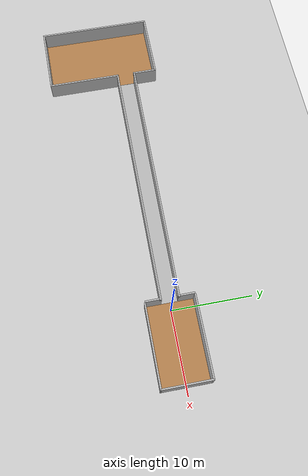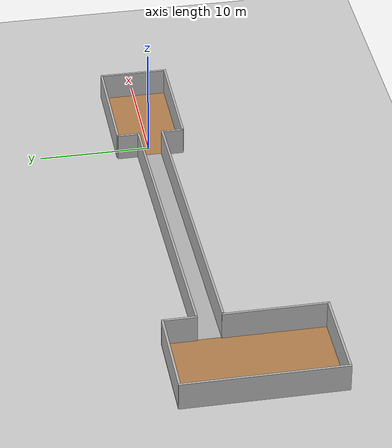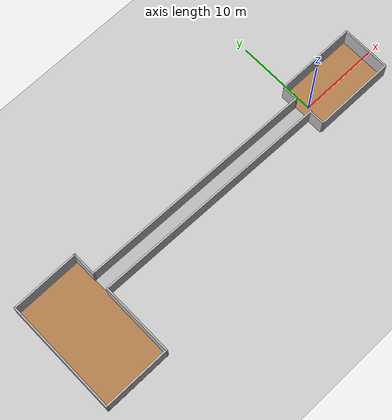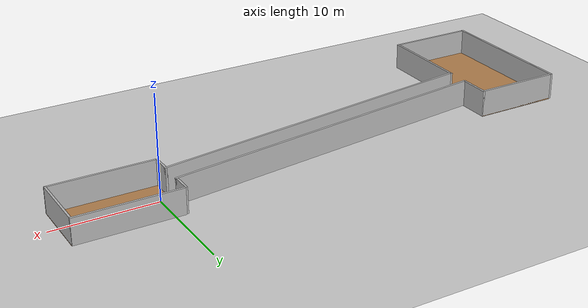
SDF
<?xml version="1.0" ?>
<sdf version="1.4">
  <world name="default">
    <physics type="ode">
      <gravity>0 0 -9.81</gravity>
      <ode>
        <solver>
          <type>quick</type>
          <iters>20</iters>
          <sor>1.0</sor>
        </solver>
        <constraints>
          <cfm>0.0</cfm>
          <erp>0.2</erp>
          <contact_max_correcting_vel>100.0</contact_max_correcting_vel>
          <contact_surface_layer>0.0</contact_surface_layer>
        </constraints>
      </ode>
      <real_time_update_rate>1000</real_time_update_rate>
      <max_step_size>0.001</max_step_size>
    </physics>
    <!-- A global light source -->
    <include>
      <uri>model://sun</uri>
    </include>
    <!-- A ground plane -->
    <include>
      <uri>model://ground_plane</uri>
    </include>
    <!-- room 1 -->
    <!-- room 1 floor -->
    <model name="room_1_floor">
      <static>true</static>
      <pose>4 0 -0.049  0 0 0</pose>
      <link name="link">
        <collision name="collision">
          <geometry>
            <box>
              <size>10 6 .1</size>
            </box>
          </geometry>
        </collision>
        <visual name="visual">
          <geometry>
            <box>
              <size>10 6 .1</size>
            </box>
          </geometry>
          <material>
            <script>
              <uri>file://media/materials/scripts/gazebo.material</uri>
              <name>Gazebo/Wood</name>
            </script>
          </material>
        </visual>
      </link>
    </model>
    <!-- room 1 - wall 1 -->
    <model name="room_1_wall_1">
      <static>true</static>
      <pose>8.9 0 1.25  0 0 0</pose>
      <link name="link">
        <collision name="collision">
          <geometry>
            <box>
              <size>0.2 6 2.5</size>
            </box>
          </geometry>
        </collision>
        <visual name="visual">
          <geometry>
            <box>
              <size>0.2 6 2.5</size>
            </box>
          </geometry>
        </visual>
      </link>
    </model>
    <!-- room 1 - wall 2 -->
    <model name="room_1_wall_2">
      <static>true</static>
      <pose>4 -3 1.25  0 0 0</pose>
      <link name="link">
        <collision name="collision">
          <geometry>
            <box>
              <size>10 0.2 2.5</size>
            </box>
          </geometry>
        </collision>
        <visual name="visual">
          <geometry>
            <box>
              <size>10 0.2 2.5</size>
            </box>
          </geometry>
        </visual>
      </link>
    </model>
    <!-- room 1 - wall 3 -->
    <model name="room_1_wall_3">
      <static>true</static>
      <pose>4 3 1.25  0 0 0</pose>
      <link name="link">
        <collision name="collision">
          <geometry>
            <box>
              <size>10 0.2 2.5</size>
            </box>
          </geometry>
        </collision>
        <visual name="visual">
          <geometry>
            <box>
              <size>10 0.2 2.5</size>
            </box>
          </geometry>
        </visual>
      </link>
    </model>
    <!-- room 1 - wall 4 -->
    <model name="room_1_wall_4">
      <static>true</static>
      <pose>-1.1 2 1.25  0 0 0</pose>
      <link name="link">
        <collision name="collision">
          <geometry>
            <box>
              <size>0.2 2.0 2.5</size>
            </box>
          </geometry>
        </collision>
        <visual name="visual">
          <geometry>
            <box>
              <size>0.2 2.0 2.5</size>
            </box>
          </geometry>
        </visual>
      </link>
    </model>
    <!-- room 1 - wall 5 -->
    <model name="room_1_wall_5">
      <static>true</static>
      <pose>-1.1 -2 1.25  0 0 0</pose>
      <link name="link">
        <collision name="collision">
          <geometry>
            <box>
              <size>0.2 2.0 2.5</size>
            </box>
          </geometry>
        </collision>
        <visual name="visual">
          <geometry>
            <box>
              <size>0.2 2.0 2.5</size>
            </box>
          </geometry>
        </visual>
      </link>
    </model>
    <!-- Ramp 1 between room 1 and room 2 -->
    <!-- ramp 1: 8% slope, angle = 4.6º  -->
    <model name="ramp_1">
      <static>true</static>
      <pose>-16 0 1.15  0 0.08 0</pose>
      <link name="link">
        <collision name="collision">
          <geometry>
            <box>
              <size>30.1 2.0 .1</size>
            </box>
          </geometry>
        </collision>
        <visual name="visual">
          <geometry>
            <box>
              <size>30.1 2.0 .1</size>
            </box>
          </geometry>
        </visual>
      </link>
    </model>
    <!-- ramp 1 - wall left -->
    <model name="ramp_1_wall_left">
      <static>true</static>
      <pose>-16 -1.1 2.46  0 0.08 0</pose>
      <link name="link">
        <collision name="collision">
          <geometry>
            <box>
              <size>30 0.2 2.5</size>
            </box>
          </geometry>
        </collision>
        <visual name="visual">
          <geometry>
            <box>
              <size>30 0.2 2.5</size>
            </box>
          </geometry>
        </visual>
      </link>
    </model>
    <!-- ramp 1 - wall right -->
    <model name="ramp_1_wall_right">
      <static>true</static>
      <pose>-16 1.1 2.46  0 0.08 0</pose>
      <link name="link">
        <collision name="collision">
          <geometry>
            <box>
              <size>30 0.2 2.5</size>
            </box>
          </geometry>
        </collision>
        <visual name="visual">
          <geometry>
            <box>
              <size>30 0.2 2.5</size>
            </box>
          </geometry>
        </visual>
      </link>
    </model>
    <!-- room 2 -->
    <!-- room 2 floor -->
    <model name="room_2_floor">
      <static>true</static>
      <pose>-34.95 -3.0 2.355  0 0 0</pose>
      <link name="link">
        <collision name="collision">
          <geometry>
            <box>
              <size>8 14 .1</size>
            </box>
          </geometry>
        </collision>
        <visual name="visual">
          <geometry>
            <box>
              <size>8 14 .1</size>
            </box>
          </geometry>
          <material>
            <script>
              <uri>file://media/materials/scripts/gazebo.material</uri>
              <name>Gazebo/Wood</name>
            </script>
          </material>
        </visual>
      </link>
    </model>
    <!-- room 2 - wall 1 -->
    <model name="room_1_wall_1">
      <static>true</static>
      <pose>-30.95 -5.5 3.605  0 0 0</pose>
      <link name="link">
        <collision name="collision">
          <geometry>
            <box>
              <size>0.2 9 2.5</size>
            </box>
          </geometry>
        </collision>
        <visual name="visual">
          <geometry>
            <box>
              <size>0.2 9 2.5</size>
            </box>
          </geometry>
        </visual>
      </link>
    </model>
    <!-- room 2 - wall 2 -->
    <model name="room_1_wall_1">
      <static>true</static>
      <pose>-30.95 2.5 3.605  0 0 0</pose>
      <link name="link">
        <collision name="collision">
          <geometry>
            <box>
              <size>0.2 3 2.5</size>
            </box>
          </geometry>
        </collision>
        <visual name="visual">
          <geometry>
            <box>
              <size>0.2 3 2.5</size>
            </box>
          </geometry>
        </visual>
      </link>
    </model>
    <!-- room 2 - wall 3 -->
    <model name="room_1_wall_1">
      <static>true</static>
      <pose>-34.95 3.9 3.605  0 0 0</pose>
      <link name="link">
        <collision name="collision">
          <geometry>
            <box>
              <size>8.0 0.2 2.5</size>
            </box>
          </geometry>
        </collision>
        <visual name="visual">
          <geometry>
            <box>
              <size>8.0 0.2 2.5</size>
            </box>
          </geometry>
        </visual>
      </link>
    </model>
    <!-- room 2 - wall 4 -->
    <model name="room_1_wall_1">
      <static>true</static>
      <pose>-39.05 -3.0 3.605  0 0 0</pose>
      <link name="link">
        <collision name="collision">
          <geometry>
            <box>
              <size>0.2 14 2.5</size>
            </box>
          </geometry>
        </collision>
        <visual name="visual">
          <geometry>
            <box>
              <size>0.2 14 2.5</size>
            </box>
          </geometry>
        </visual>
      </link>
    </model>
    <!-- room 2 - wall 5 -->
    <model name="room_1_wall_1">
      <static>true</static>
      <pose>-34.95 -9.9 3.605  0 0 0</pose>
      <link name="link">
        <collision name="collision">
          <geometry>
            <box>
              <size>8.0 0.2 2.5</size>
            </box>
          </geometry>
        </collision>
        <visual name="visual">
          <geometry>
            <box>
              <size>8.0 0.2 2.5</size>
            </box>
          </geometry>
        </visual>
      </link>
    </model>
  </world>
</sdf>
